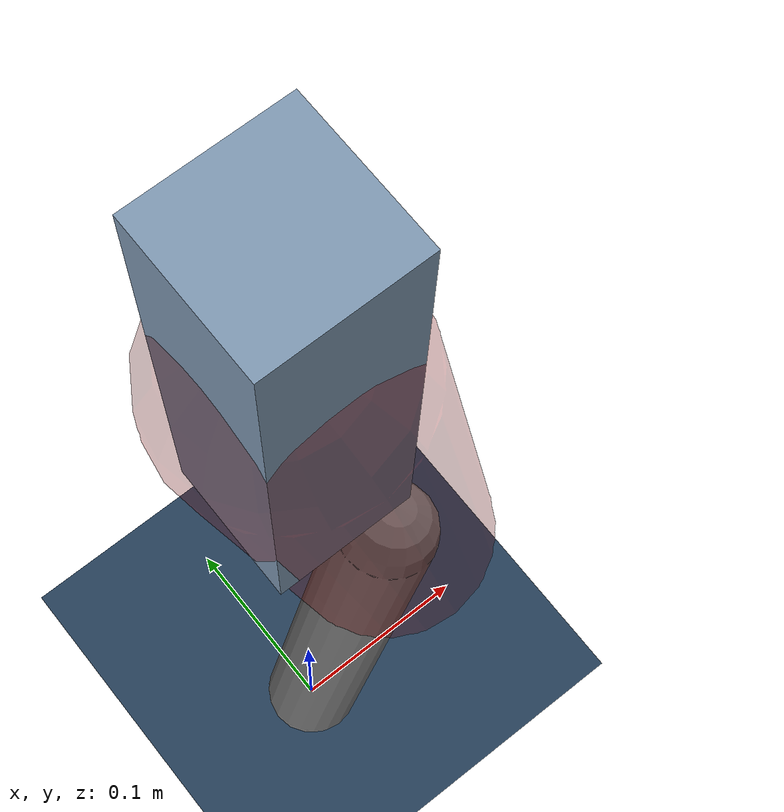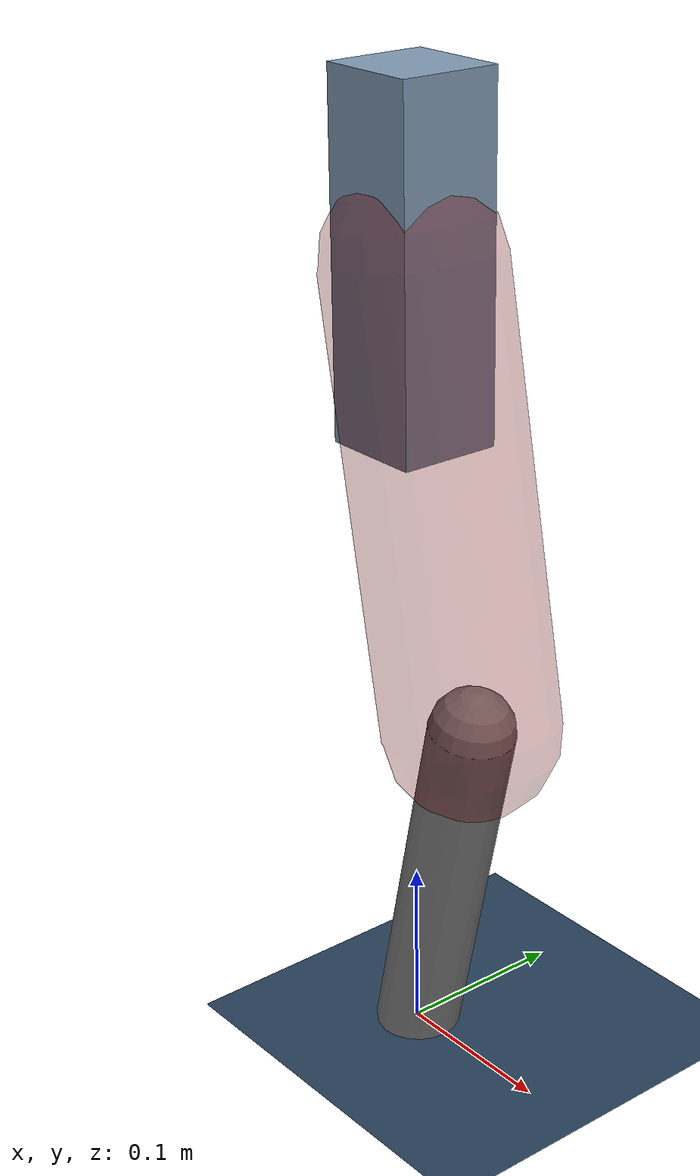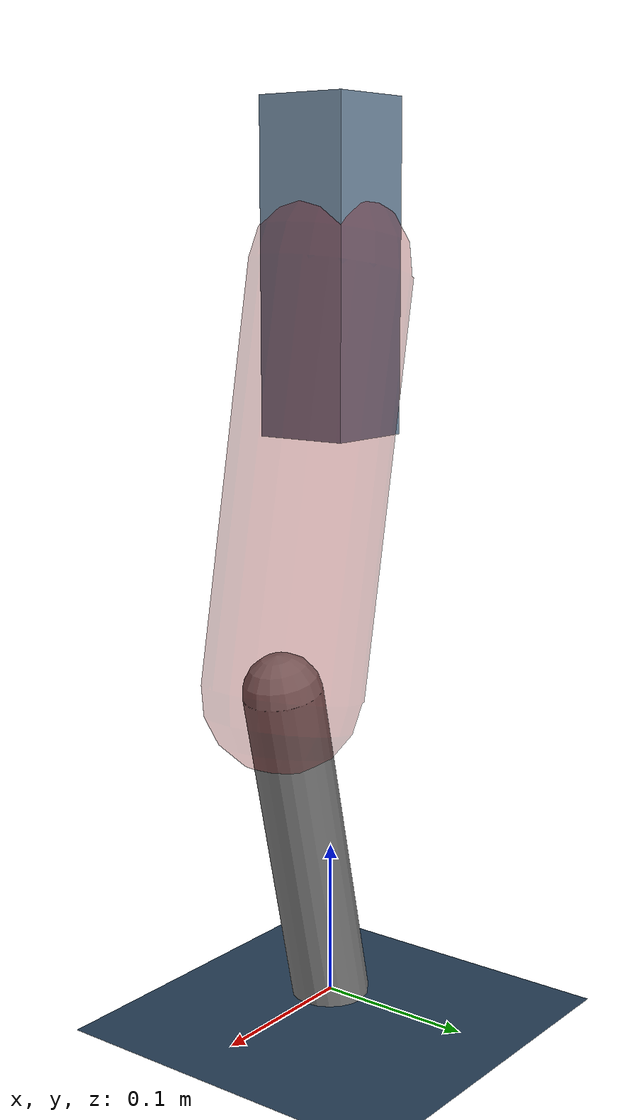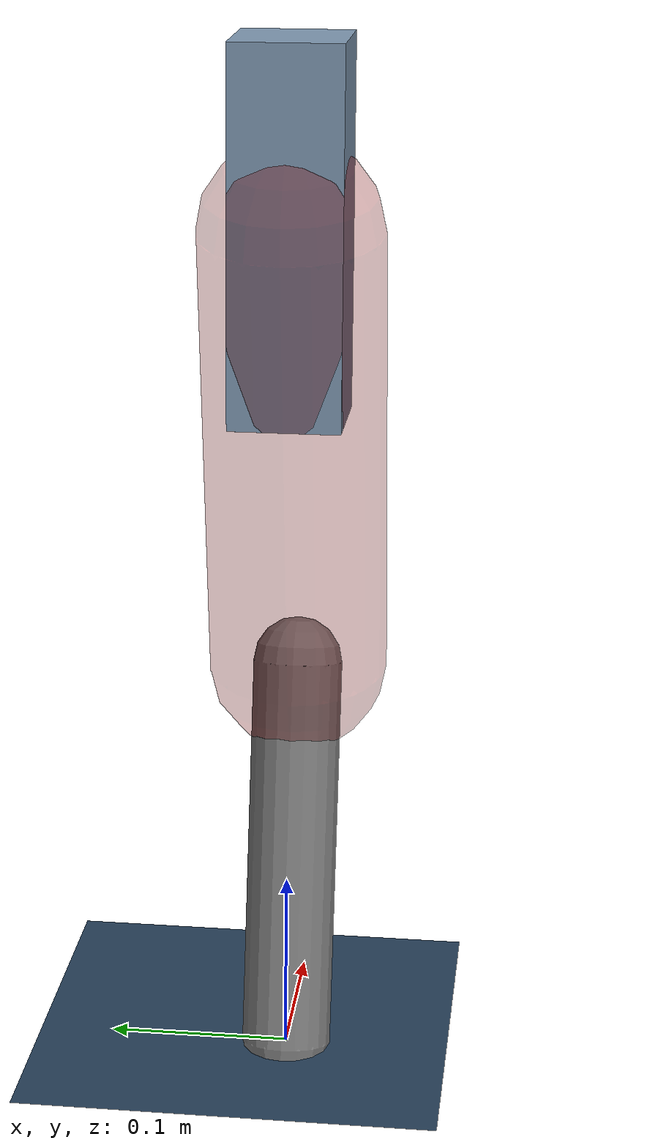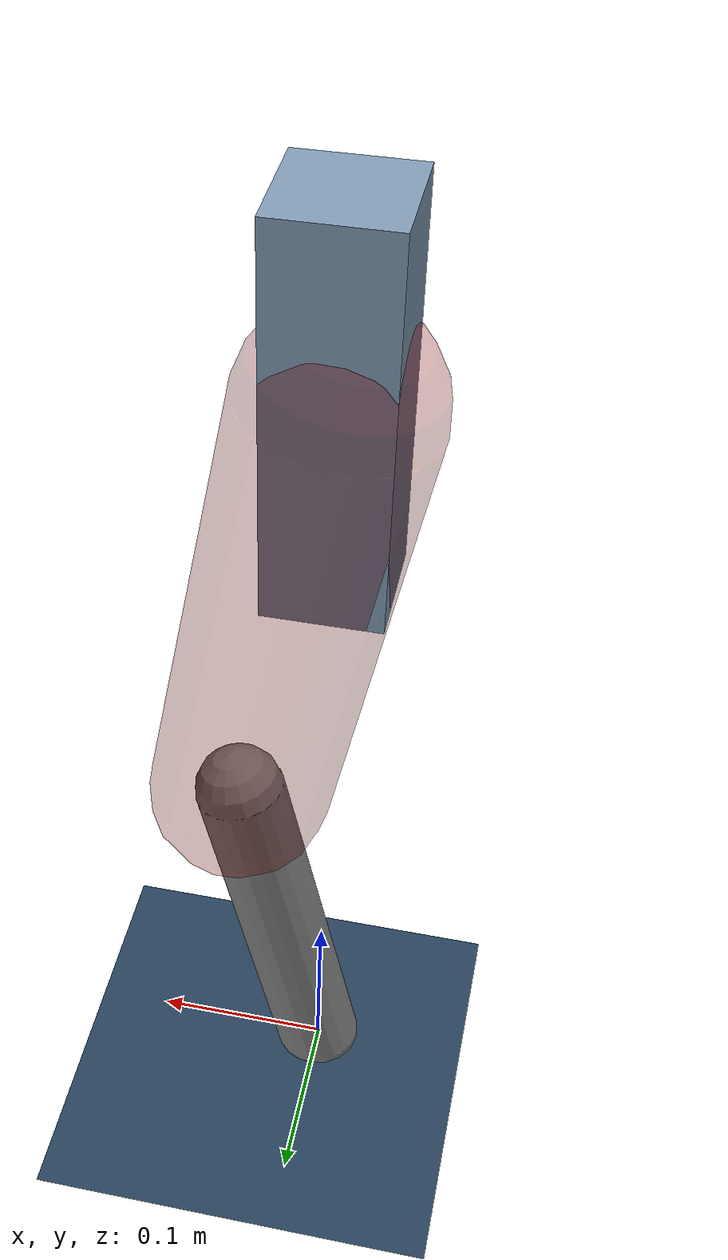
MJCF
<mujoco model="Hopper2D">
	<compiler inertiafromgeom="true" angle="radian" />
	<option timestep="0.001" integrator="implicit" cone="elliptic" solver="Newton" tolerance="1e-10" />

	<default>
		<geom contype="1" conaffinity="1" condim="3" friction="2 0.005 0.0001" solref="0.005 1" />
		<joint limited="true" damping="0.1" />
	</default>

	<asset>
		<texture name="skybox" type="skybox" builtin="gradient" rgb1=".4 .6 .8" rgb2="0 0 0" width="800" height="800" />
		<texture name="grid" type="2d" builtin="checker" rgb1=".1 .2 .3" rgb2=".2 .3 .4" width="300" height="300" mark="edge" markrgb=".2 .3 .4" />
		<material name="ground" texture="grid" texrepeat="1 1" texuniform="true" reflectance="0.1" />
		<material name="leg" rgba="0.5 0.6 0.7 1" />
	</asset>

	<worldbody>

		<geom name="floor" type="plane" size="5 5 0.25" material="ground" />

		<light directional="false" diffuse="0.8 0.8 0.8" specular="0.3 0.3 0.3" pos="0 0 2" dir="0 0 -1" />
		<light mode="targetbodycom" target="base" directional="false" diffuse="0.8 0.8 0.8" specular="0.3 0.3 0.3" pos="0 0 2" dir="0 0 -1" />

		<camera name="fixed" pos="0 -2 1" xyaxes="1 0 0 0 0 1" />
		<camera name="tracking" mode="trackcom" pos="0 -3 1" />

		<body name="root" pos="0 0 0.46633109274543405">
			<joint name="slide_x" type="slide" axis="1 0 0" range="-100 100" />
			<joint name="slide_z" type="slide" axis="0 0 1" range="0 10" />

			<body name="base" pos="0 0 0">
				<geom name="torso" type="box" size="0.03 0.03 0.1" mass="2.1510000000000002" material="leg" />

				<body name="link1" pos="0 0 0" euler="0 1.381944522315725 0">
					<joint type="hinge" axis="0 -1 0" pos="0 0 0" name="hinge1" limited="true" range="-3.14 3.14" stiffness="0" damping="0.1" />
					<geom name="thigh" type="capsule" fromto="0 0 0 0.2576823922739184 0 0" size="0.05" rgba="0.5 0 0 0.3" mass="0.8763742199121879" />

					<body name="link2" pos="0.2576823922739184 0 0" euler="0 0.4119432096378187 0">
						<joint type="hinge" axis="0 -1 0" pos="0 0 0" name="hinge2" limited="true" range="-3.14 3.14" stiffness="0" damping="0.1" />
						<geom name="shank" type="capsule" fromto="0 0 0 0.2186487004715156 0 0" size="0.025" mass="0.4165189603772125" />

					</body>
				</body>
			</body>
		</body>
	</worldbody>

	<actuator>
		<motor name="torque1" joint="hinge1" ctrlrange="-65.11604336478372 65.11604336478372" ctrllimited="true" gear="1" />
		<motor name="torque2" joint="hinge2" ctrlrange="-92.23054213497348 92.23054213497348" ctrllimited="true" gear="1" />
	</actuator>
</mujoco>
